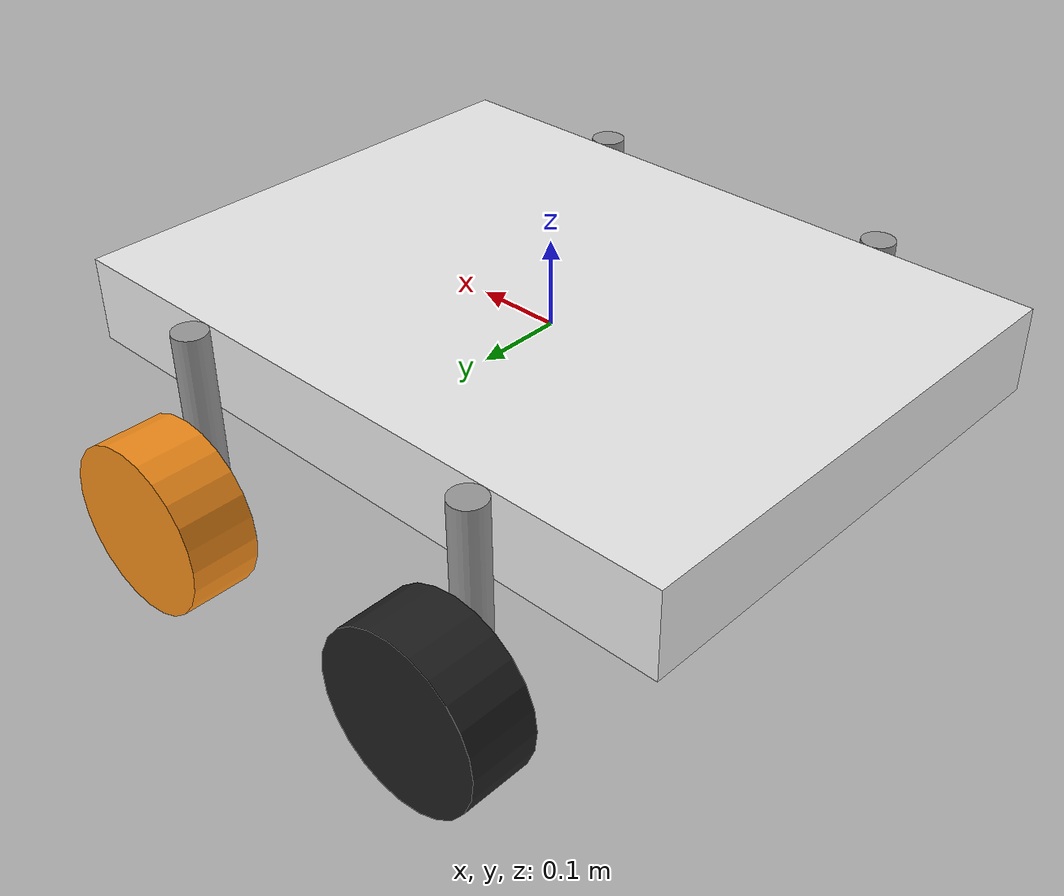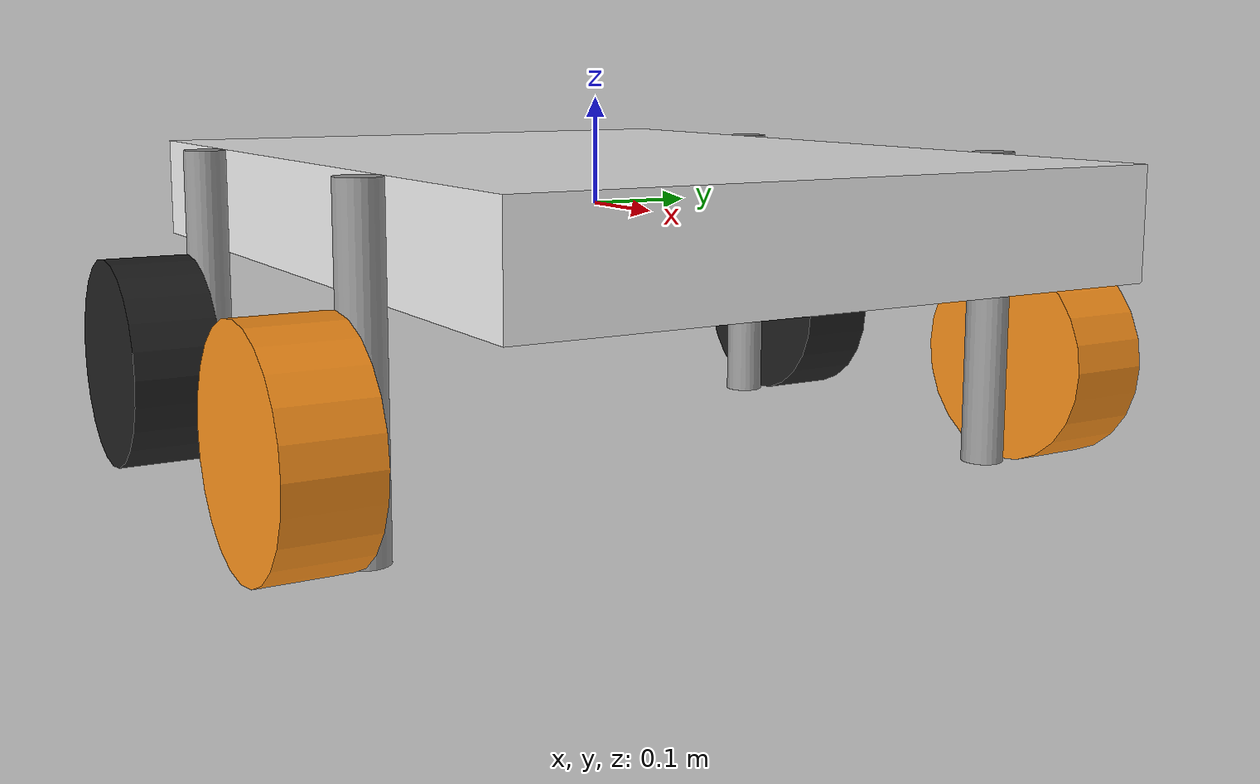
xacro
<?xml version="1.0"?>
<robot xmlns:xacro="http://www.ros.org/wiki/xacro">

    <!-- Include macros -->
    <xacro:include filename="$(find charlie_description)/macros/inertial_macros.xacro"/>

    <!-- Properties -->
    <xacro:property name="scale" value="2"/>

    <!-- Camera dimensions -->
    <xacro:property name="cam_base_x" value="${scale*0.015}"/>
    <xacro:property name="cam_base_y" value="${scale*0.015}"/>
    <xacro:property name="cam_base_z" value="${scale*0.015}"/>

    <xacro:property name="cam_x" value="${scale*0.025}"/>
    <xacro:property name="cam_y" value="${scale*0.05}"/>
    <xacro:property name="cam_z" value="${scale*0.025}"/>

    <!-- Robot dimensions -->
    <xacro:property name="rad_w" value="${scale*0.05}"/> <!-- Wheel radius 2(scale)*0.05 = 0.10-->
    <xacro:property name="le_w" value="${scale*0.04}"/>
    <xacro:property name="ly" value="${scale*0.3}"/> <!-- For steering & traction track -->
    <xacro:property name="lx" value="${scale*0.4}"/> <!-- For wheelbase -->
    <xacro:property name="lz" value="${scale*0.05}"/>
    <xacro:property name="offset" value="${scale*0.1}"/> <!-- For wheelbase -->

    <!-- Steering components -->
    <xacro:property name="steering_r" value="${scale*0.01}"/> <!-- For steering & traction track -->
    <xacro:property name="steering_l" value="${scale*0.15}"/>

    <!-- IMU dimensions -->
    <xacro:property name="imu_lx" value="${scale*0.05}"/>
    <xacro:property name="imu_ly" value="${scale*0.05}"/>
    <xacro:property name="imu_lz" value="${scale*0.01}"/>

    <!-- Macros -->
    <xacro:macro name="wheel_macro" params="p_name p_radius p_length p_color p_mass">
        <link name="${p_name}">
            <visual>
                <geometry>
                    <cylinder radius="${p_radius}" length="${p_length}"/>
                </geometry>
                <material name="${p_color}"/>
                <origin xyz="0 0 0" rpy="0 0 0"/>
            </visual>
            <collision>
                <geometry>
                    <cylinder radius="${p_radius}" length="${p_length}"/>
                </geometry>
                <origin xyz="0 0 0" rpy="0 0 0"/>
            </collision>
            <xacro:inertial_cylinder mass="${p_mass}" length="${p_length}" radius="${p_radius}">
                <origin xyz="0 0 0" rpy="0 0 0"/>
            </xacro:inertial_cylinder>
        </link>
    </xacro:macro>

    <xacro:macro name="steering_macro" params="p_name p_radius p_length p_color p_mass">
        <link name="${p_name}">
            <visual>
                <origin xyz="0.0 0 0"/>
                <geometry>
                    <cylinder radius="${p_radius}" length="${p_length}"/>
                </geometry>
                <material name="${p_color}"/>
            </visual>
            <collision>
                <origin xyz="0 0 0"/>
                <geometry>
                    <cylinder radius="${p_radius}" length="${p_length}"/>
                </geometry>
            </collision>
            <xacro:inertial_cylinder mass="${p_mass}" length="${p_length}" radius="${p_radius}">
                <origin xyz="0 0 0" rpy="0 0 0"/>
            </xacro:inertial_cylinder>
        </link>
    </xacro:macro>

    <!-- Base Links -->
    <link name="base_link">
    </link>

    <!-- Chassis -->
    <link name="chassis">
        <visual>
            <origin xyz="0 0 0"/>
            <geometry>
                <box size="${lx} ${ly} ${lz}"/>
            </geometry>
            <material name="white"/>
        </visual>
        <collision>
            <origin xyz="0 0 0"/>
            <geometry>
               <box size="${lx} ${ly} ${lz}"/>
            </geometry>
        </collision>
        <xacro:inertial_box mass="5.0" x="${lx}" y="${ly}" z="${lz}">
            <origin xyz="0 0 0" rpy="0 0 0"/>
        </xacro:inertial_box>
    </link>

    <!-- Steering Links -->
    <xacro:steering_macro p_name="left_steering_link"
                         p_radius="${steering_r}"
                         p_length="${steering_l}"
                         p_color="gray"
                         p_mass="0.1"/>

    <xacro:steering_macro p_name="right_steering_link"
                         p_radius="${steering_r}"
                         p_length="${steering_l}"
                         p_color="gray"
                         p_mass="0.1"/>

    <xacro:steering_macro p_name="left_rear_steering_link"
                         p_radius="${steering_r}"
                         p_length="${steering_l}"
                         p_color="gray"
                         p_mass="0.1"/>

    <xacro:steering_macro p_name="right_rear_steering_link"
                         p_radius="${steering_r}"
                         p_length="${steering_l}"
                         p_color="gray"
                         p_mass="0.1"/>

    <!-- Wheel Links -->
    <xacro:wheel_macro p_name="left_front_wheel"
                      p_radius="${rad_w}"
                      p_length="${le_w}"
                      p_color="orange"
                      p_mass="1.0"/>

    <xacro:wheel_macro p_name="right_front_wheel"
                      p_radius="${rad_w}"
                      p_length="${le_w}"
                      p_color="orange"
                      p_mass="1.0"/>

    <xacro:wheel_macro p_name="left_rear_wheel"
                      p_radius="${rad_w}"
                      p_length="${le_w}"
                      p_color="black"
                      p_mass="1.0"/>

    <xacro:wheel_macro p_name="right_rear_wheel"
                      p_radius="${rad_w}"
                      p_length="${le_w}"
                      p_color="black"
                      p_mass="1.0"/>

    <!-- Joints -->
    <joint name="base_link_joint" type="fixed">
        <parent link="base_link"/>
        <child link="chassis"/>
        <origin xyz="0 0 0"/>
    </joint>

    <!-- Front Steering Joints -->
    <joint name="left_steering_wheel_joint" type="revolute"> <!-- Steering joint -->
        <parent link="chassis"/>
        <child link="left_steering_link"/>
        <origin xyz="${lx/2 - offset} ${ly/2+steering_r} -${lz}" rpy="0 0 0"/> <!-- For wheelbase --> <!-- For steering & traction track -->
        <axis xyz="0 0 1"/>
        <limit lower="-${pi/4}" upper="${pi/4}" effort="5.0" velocity="1.0"/>
        <dynamics damping="0.5" friction="0.0"/>
    </joint>

    <joint name="right_steering_wheel_joint" type="revolute"> <!-- Steering joint -->
        <parent link="chassis"/>
        <child link="right_steering_link"/>
        <origin xyz="${lx/2 - offset} -${ly/2 + steering_r} -${lz}" rpy="0 0 0"/> <!-- For steering & traction track -->
        <axis xyz="0 0 1"/>
        <limit lower="-${pi/4}" upper="${pi/4}" effort="5.0" velocity="1.0"/>
        <dynamics damping="0.5" friction="0.0"/>
    </joint>

    <!-- Rear Steering Joints (Fixed) -->
    <joint name="left_rear_steering_joint" type="fixed">
        <parent link="chassis"/>
        <child link="left_rear_steering_link"/>
        <origin xyz="-${lx/2-offset} ${ly/2+steering_r} -${lz}" rpy="0 0 0"/> <!-- For wheelbase --> <!-- For steering & traction track -->
    </joint>

    <joint name="right_rear_steering_joint" type="fixed">
        <parent link="chassis"/>
        <child link="right_rear_steering_link"/>
        <origin xyz="-${lx/2-offset} -${ly/2+steering_r} -${lz}" rpy="0 0 0"/> <!-- For wheelbase --> <!-- For steering & traction track -->
    </joint>

    <!-- Wheel Joints -->
    <joint name="left_front_wheel_joint" type="continuous">
        <parent link="left_steering_link"/>
        <child link="left_front_wheel"/>
        <origin xyz="0.0 ${le_w/2+steering_r} -${steering_l/2-rad_w}" rpy="${pi/2} 0 0"/>
        <axis xyz="0 0 -1"/>
        <dynamics damping="0.2" friction="0.0"/>
    </joint>

    <joint name="right_front_wheel_joint" type="continuous">
        <parent link="right_steering_link"/>
        <child link="right_front_wheel"/>
        <origin xyz="0.0 -${le_w/2+steering_r} -${steering_l/2-rad_w}" rpy="${pi/2} 0 0"/>
        <axis xyz="0 0 -1"/>
        <dynamics damping="0.2" friction="0.0"/>
    </joint>

    <joint name="left_rear_wheel_joint" type="continuous"> <!-- Traction joint -->
        <parent link="left_rear_steering_link"/>
        <child link="left_rear_wheel"/>
        <origin xyz="0.0 ${le_w/2+steering_r} -${steering_l/2-rad_w}" rpy="${pi/2} 0 0"/>
        <axis xyz="0 0 -1"/>
        <dynamics damping="0.2" friction="0.0"/>
    </joint>

    <joint name="right_rear_wheel_joint" type="continuous"> <!-- Traction joint -->
        <parent link="right_rear_steering_link"/>
        <child link="right_rear_wheel"/>
        <origin xyz="0.0 -${le_w/2+steering_r} -${steering_l/2-rad_w}" rpy="${pi/2} 0 0"/>
        <axis xyz="0 0 -1"/>
        <dynamics damping="0.2" friction="0.0"/>
    </joint>

</robot>

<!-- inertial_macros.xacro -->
<robot xmlns:xacro="http://www.ros.org/wiki/xacro" >

    <!-- Specify some standard inertial calculations https://en.wikipedia.org/wiki/List_of_moments_of_inertia -->
    <!-- These make use of xacro's mathematical functionality -->

    <xacro:macro name="inertial_sphere" params="mass radius *origin">
        <inertial>
            <xacro:insert_block name="origin"/>
            <mass value="${mass}" />
            <inertia ixx="${(2/5) * mass * (radius*radius)}" ixy="0.0" ixz="0.0"
                    iyy="${(2/5) * mass * (radius*radius)}" iyz="0.0"
                    izz="${(2/5) * mass * (radius*radius)}" />
        </inertial>
    </xacro:macro>

    <xacro:macro name="inertial_box" params="mass x y z *origin">
        <inertial>
            <xacro:insert_block name="origin"/>
            <mass value="${mass}" />
            <inertia ixx="${(1/12) * mass * (y*y+z*z)}" ixy="0.0" ixz="0.0"
                    iyy="${(1/12) * mass * (x*x+z*z)}" iyz="0.0"
                    izz="${(1/12) * mass * (x*x+y*y)}" />
        </inertial>
    </xacro:macro>

    <xacro:macro name="inertial_cylinder" params="mass length radius *origin">
        <inertial>
            <xacro:insert_block name="origin"/>
            <mass value="${mass}" />
            <inertia ixx="${(1/12) * mass * (3*radius*radius + length*length)}" ixy="0.0" ixz="0.0"
                    iyy="${(1/12) * mass * (3*radius*radius + length*length)}" iyz="0.0"
                    izz="${(1/2) * mass * (radius*radius)}" />
        </inertial>
    </xacro:macro>
</robot>
